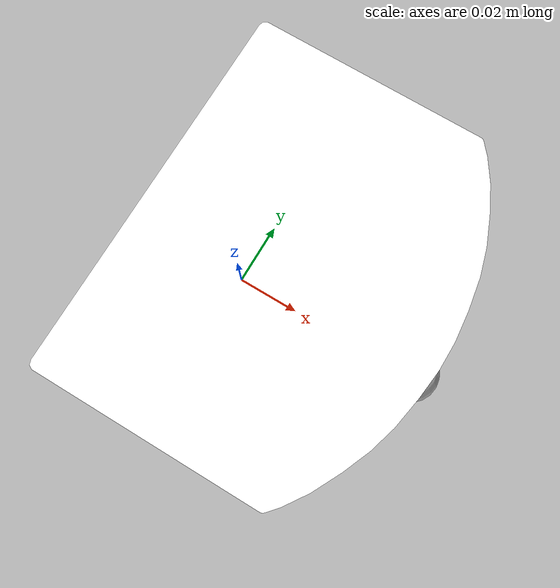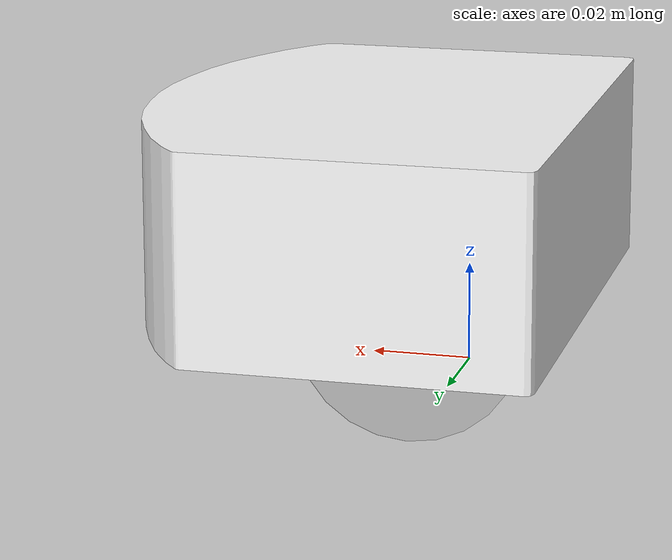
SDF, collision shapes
<sdf version='1.7'>
  <model name='thymio'>
    <link name='base_link'>
      <inertial>
        <pose>0.0243 0 0.0315 0 -0 0</pose>
        <mass>0.2</mass>
        <inertia>
          <ixx>0.0004398</ixx>
          <ixy>0</ixy>
          <ixz>-0.000152</ixz>
          <iyy>0.0005278</iyy>
          <iyz>0</iyz>
          <izz>0.0005052</izz>
        </inertia>
      </inertial>
      <collision name='base_link_collision'>
        <pose>0 0 0 0 -0 0</pose>
        <geometry>
          <mesh>
            <scale>0.8 1 1</scale>
            <uri>model://thymio/meshes/base_collision.dae</uri>
          </mesh>
        </geometry>
        <surface>
          <contact>
            <ode/>
          </contact>
          <friction>
            <ode>
              <mu>0.1</mu>
              <mu2>0.1</mu2>
            </ode>
          </friction>
        </surface>
      </collision>
      <collision name='base_link_collision_1'>
        <pose>0.06 0 0.009 0 -0 0</pose>
        <geometry>
          <sphere>
            <radius>0.009</radius>
          </sphere>
        </geometry>
        <surface>
          <contact>
            <ode/>
          </contact>
          <friction>
            <ode>
              <mu>0.1</mu>
              <mu2>0.1</mu2>
            </ode>
          </friction>
        </surface>
      </collision>
      <visual name='base_link_visual'>
        <pose>0 0 0 0 -0 0</pose>
        <geometry>
          <mesh>
            <scale>1 1 1</scale>
            <uri>model://thymio/meshes/base_simple.dae</uri>
          </mesh>
        </geometry>
      </visual>
      <self_collide>0</self_collide>

      <sensor name='ground_left_sensor' type='ray'>
        <visualize>1</visualize>
        <update_rate>10</update_rate>
        <always_on>1</always_on>
        <ray>
          <scan>
            <horizontal>
              <samples>1</samples>
              <resolution>1</resolution>
              <min_angle>0.0</min_angle>
              <max_angle>0.0</max_angle>
            </horizontal>
            <vertical>
              <samples>1</samples>
              <resolution>1</resolution>
              <min_angle>0.0</min_angle>
              <max_angle>0.0</max_angle>
            </vertical>
          </scan>
          <range>
            <min>0</min>
            <max>0.03</max>
            <resolution>0.005</resolution>
          </range>
          <noise>
            <type>gaussian</type>
            <mean>0</mean>
            <stddev>0.0025</stddev>
          </noise>
        </ray>
        <plugin name='ground_left_controller' filename='libgazebo_ros_ray_sensor.so'>
          <radiation_type>infrared</radiation_type>
          <ros>
            <namespace>my_namespace</namespace>
            <argument>~/out:=ground/left</argument>
          </ros>
          <output_type>sensor_msgs/Range</output_type>
        </plugin>
        <pose>0.07157 0.01155 0.009 3.14159 1.57079 -2.89848</pose>
        <frame name='ground_left_link'/>
      </sensor>

      <sensor name='ground_right_sensor' type='ray'>
        <visualize>1</visualize>
        <update_rate>10</update_rate>
        <always_on>1</always_on>
        <ray>
          <scan>
            <horizontal>
              <samples>1</samples>
              <resolution>1</resolution>
              <min_angle>0.0</min_angle>
              <max_angle>0.0</max_angle>
            </horizontal>
            <vertical>
              <samples>1</samples>
              <resolution>1</resolution>
              <min_angle>0.0</min_angle>
              <max_angle>0.0</max_angle>
            </vertical>
          </scan>
          <range>
            <min>0</min>
            <max>0.03</max>
            <resolution>0.005</resolution>
          </range>
          <noise>
            <type>gaussian</type>
            <mean>0</mean>
            <stddev>0.0025</stddev>
          </noise>
        </ray>
        <plugin name='ground_right_controller' filename='libgazebo_ros_ray_sensor.so'>
          <radiation_type>infrared</radiation_type>
          <ros>
            <namespace>my_namespace</namespace>
            <argument>~/out:=ground/right</argument>
          </ros>
          <output_type>sensor_msgs/Range</output_type>
        </plugin>
        <pose>0.07157 -0.01155 0.009 3.14159 1.57079 2.89848</pose>
        <frame name='ground_right_link'/>
      </sensor>
    </link>

    <link name='proximity_center_link'>
      <sensor name='proximity_center_sensor' type='ray'>
        <visualize>1</visualize>
        <update_rate>10</update_rate>
        <always_on>1</always_on>
        <ray>
          <scan>
            <horizontal>
              <samples>1</samples>
              <resolution>1</resolution>
              <min_angle>0.0</min_angle>
              <max_angle>0.0</max_angle>
            </horizontal>
            <vertical>
              <samples>1</samples>
              <resolution>1</resolution>
              <min_angle>0.0</min_angle>
              <max_angle>0.0</max_angle>
            </vertical>
          </scan>
          <range>
            <min>0</min>
            <max>0.12</max>
            <resolution>0.005</resolution>
          </range>
          <noise>
            <type>gaussian</type>
            <mean>0</mean>
            <stddev>0.0025</stddev>
          </noise>
        </ray>
        <plugin name='proximity_center_controller' filename='libgazebo_ros_ray_sensor.so'>
          <radiation_type>infrared</radiation_type>
          <ros>
            <namespace>my_namespace</namespace>
            <argument>~/out:=proximity/center</argument>
          </ros>
          <output_type>sensor_msgs/Range</output_type>
          <frame name='proximity_center_link'/>
        </plugin>
        <frame name='proximity_center_link'/>
        <pose>0.08 0 0.035 0 -0 0</pose>
      </sensor>
    </link>

    <link name='proximity_center_left_link'>
      <sensor name='proximity_center_left_sensor' type='ray'>
        <visualize>1</visualize>
        <update_rate>10</update_rate>
        <always_on>1</always_on>
        <ray>
          <scan>
            <horizontal>
              <samples>1</samples>
              <resolution>1</resolution>
              <min_angle>0.0</min_angle>
              <max_angle>0.0</max_angle>
            </horizontal>
            <vertical>
              <samples>1</samples>
              <resolution>1</resolution>
              <min_angle>0.0</min_angle>
              <max_angle>0.0</max_angle>
            </vertical>
          </scan>
          <range>
            <min>0</min>
            <max>0.12</max>
            <resolution>0.005</resolution>
          </range>
          <noise>
            <type>gaussian</type>
            <mean>0</mean>
            <stddev>0.0025</stddev>
          </noise>
        </ray>
        <plugin name='proximity_center_left_controller' filename='libgazebo_ros_ray_sensor.so'>
          <radiation_type>infrared</radiation_type>
          <ros>
            <namespace>my_namespace</namespace>
            <argument>~/out:=proximity/center_left</argument>
          </ros>
          <output_type>sensor_msgs/Range</output_type>
        </plugin>
        <pose>0.0756 0.0261 0.035 0 -0 0.33161</pose>
        <frame name='proximity_center_left_link'/>
      </sensor>
    </link>

    <link name='proximity_left_link'>
      <sensor name='proximity_left_sensor' type='ray'>
        <visualize>1</visualize>
        <update_rate>10</update_rate>
        <always_on>1</always_on>
        <ray>
          <scan>
            <horizontal>
              <samples>1</samples>
              <resolution>1</resolution>
              <min_angle>0.0</min_angle>
              <max_angle>0.0</max_angle>
            </horizontal>
            <vertical>
              <samples>1</samples>
              <resolution>1</resolution>
              <min_angle>0.0</min_angle>
              <max_angle>0.0</max_angle>
            </vertical>
          </scan>
          <range>
            <min>0</min>
            <max>0.12</max>
            <resolution>0.005</resolution>
          </range>
          <noise>
            <type>gaussian</type>
            <mean>0</mean>
            <stddev>0.0025</stddev>
          </noise>
        </ray>
        <plugin name='proximity_left_controller' filename='libgazebo_ros_ray_sensor.so'>
          <radiation_type>infrared</radiation_type>
          <ros>
            <namespace>my_namespace</namespace>
            <argument>~/out:=proximity/left</argument>
          </ros>
          <output_type>sensor_msgs/Range</output_type>
        </plugin>
        <pose>0.063 0.0493 0.035 0 -0 0.66323</pose>
        <frame name='proximity_left_link'/>
      </sensor>
    </link>

    <link name='proximity_rear_left_link'>
      <sensor name='proximity_rear_left_sensor' type='ray'>
        <visualize>1</visualize>
        <update_rate>10</update_rate>
        <always_on>1</always_on>
        <ray>
          <scan>
            <horizontal>
              <samples>1</samples>
              <resolution>1</resolution>
              <min_angle>0.0</min_angle>
              <max_angle>0.0</max_angle>
            </horizontal>
            <vertical>
              <samples>1</samples>
              <resolution>1</resolution>
              <min_angle>0.0</min_angle>
              <max_angle>0.0</max_angle>
            </vertical>
          </scan>
          <range>
            <min>0</min>
            <max>0.12</max>
            <resolution>0.005</resolution>
          </range>
          <noise>
            <type>gaussian</type>
            <mean>0</mean>
            <stddev>0.0025</stddev>
          </noise>
        </ray>
        <plugin name='proximity_rear_left_controller' filename='libgazebo_ros_ray_sensor.so'>
          <radiation_type>infrared</radiation_type>
          <ros>
            <namespace>my_namespace</namespace>
            <argument>~/out:=proximity/rear_left</argument>
          </ros>
          <output_type>sensor_msgs/Range</output_type>
        </plugin>
        <pose>-0.03 0.0305 0.035 0 -0 3.14159</pose>
        <frame name='proximity_rear_left_link'/>
      </sensor>
    </link>

    <link name='proximity_rear_right_link'>
      <sensor name='proximity_rear_right_sensor' type='ray'>
        <visualize>1</visualize>
        <update_rate>10</update_rate>
        <always_on>1</always_on>
        <ray>
          <scan>
            <horizontal>
              <samples>1</samples>
              <resolution>1</resolution>
              <min_angle>0.0</min_angle>
              <max_angle>0.0</max_angle>
            </horizontal>
            <vertical>
              <samples>1</samples>
              <resolution>1</resolution>
              <min_angle>0.0</min_angle>
              <max_angle>0.0</max_angle>
            </vertical>
          </scan>
          <range>
            <min>0</min>
            <max>0.12</max>
            <resolution>0.005</resolution>
          </range>
          <noise>
            <type>gaussian</type>
            <mean>0</mean>
            <stddev>0.0025</stddev>
          </noise>
        </ray>
        <plugin name='proximity_rear_right_controller' filename='libgazebo_ros_ray_sensor.so'>
          <radiation_type>infrared</radiation_type>
          <ros>
            <namespace>my_namespace</namespace>
            <argument>~/out:=proximity/rear_right</argument>
          </ros>
          <output_type>sensor_msgs/Range</output_type>
        </plugin>
        <pose>-0.03 -0.0305 0.035 0 -0 3.14159</pose>
        <frame name='proximity_rear_right_link'/>
      </sensor>
    </link>

    <link name='proximity_right_link'>
      <sensor name='proximity_right_sensor' type='ray'>
        <visualize>1</visualize>
        <update_rate>10</update_rate>
        <always_on>1</always_on>
        <ray>
          <scan>
            <horizontal>
              <samples>1</samples>
              <resolution>1</resolution>
              <min_angle>0.0</min_angle>
              <max_angle>0.0</max_angle>
            </horizontal>
            <vertical>
              <samples>1</samples>
              <resolution>1</resolution>
              <min_angle>0.0</min_angle>
              <max_angle>0.0</max_angle>
            </vertical>
          </scan>
          <range>
            <min>0</min>
            <max>0.12</max>
            <resolution>0.005</resolution>
          </range>
          <noise>
            <type>gaussian</type>
            <mean>0</mean>
            <stddev>0.0025</stddev>
          </noise>
        </ray>
        <plugin name='proximity_right_controller' filename='libgazebo_ros_ray_sensor.so'>
          <radiation_type>infrared</radiation_type>
          <ros>
            <namespace>my_namespace</namespace>
            <argument>~/out:=proximity/right</argument>
          </ros>
          <output_type>sensor_msgs/Range</output_type>
        </plugin>
        <pose>0.063 -0.0493 0.035 0 0 -0.66323</pose>
        <frame name='proximity_right_link'/>
      </sensor>
    </link>

    <link name='proximity_center_right_link'>
      <sensor name='proximity_center_right_sensor' type='ray'>
        <visualize>1</visualize>
        <update_rate>10</update_rate>
        <always_on>1</always_on>
        <ray>
          <scan>
            <horizontal>
              <samples>1</samples>
              <resolution>1</resolution>
              <min_angle>0.0</min_angle>
              <max_angle>0.0</max_angle>
            </horizontal>
            <vertical>
              <samples>1</samples>
              <resolution>1</resolution>
              <min_angle>0.0</min_angle>
              <max_angle>0.0</max_angle>
            </vertical>
          </scan>
          <range>
            <min>0</min>
            <max>0.12</max>
            <resolution>0.005</resolution>
          </range>
          <noise>
            <type>gaussian</type>
            <mean>0</mean>
            <stddev>0.0025</stddev>
          </noise>
        </ray>
        <plugin name='proximity_center_right_controller' filename='libgazebo_ros_ray_sensor.so'>
          <radiation_type>infrared</radiation_type>
          <ros>
            <namespace>my_namespace</namespace>
            <argument>~/out:=proximity/center_right</argument>
          </ros>
          <output_type>sensor_msgs/Range</output_type>
        </plugin>
        <pose>0.0756 -0.0261 0.035 0 0 -0.33161</pose>
        <frame name='proximity_center_right_link'/>
      </sensor>
    </link>

    <joint name='left_wheel_joint' type='revolute'>
      <pose relative_to='base_link'>0 0.04675 0.022 0 -0 0</pose>
      <parent>base_link</parent>
      <child>left_wheel_link</child>
      <axis>
        <xyz>0 1 0</xyz>
        <limit>
          <effort>0</effort>
          <velocity>7.757</velocity>
          <lower>-1e+16</lower>
          <upper>1e+16</upper>
        </limit>
        <dynamics>
          <damping>0.1</damping>
          <friction>0.1</friction>
          <spring_reference>0</spring_reference>
          <spring_stiffness>0</spring_stiffness>
        </dynamics>
      </axis>
    </joint>
    <link name='left_wheel_link'>
      <pose relative_to='left_wheel_joint'>0 0 0 0 -0 0</pose>
      <inertial>
        <pose>0 0 0 0 -0 0</pose>
        <mass>0.024</mass>
        <inertia>
          <ixx>3.354e-06</ixx>
          <ixy>0</ixy>
          <ixz>0</ixz>
          <iyy>5.808e-06</iyy>
          <iyz>0</iyz>
          <izz>3.354e-06</izz>
        </inertia>
      </inertial>
      <collision name='left_wheel_link_collision'>
        <pose>0 0 0 1.5708 -0 0</pose>
        <geometry>
          <cylinder>
            <length>0.015</length>
            <radius>0.022</radius>
          </cylinder>
        </geometry>
        <surface>
          <contact>
            <ode/>
          </contact>
          <friction>
            <ode>
              <mu>100</mu>
              <mu2>50</mu2>
            </ode>
          </friction>
        </surface>
      </collision>
      <visual name='left_wheel_link_visual'>
        <pose>0 0 0 1.5708 -0 0</pose>
        <geometry>
          <mesh>
            <scale>1 1 1</scale>
            <uri>model://thymio/meshes/wheel.dae</uri>
          </mesh>
        </geometry>
      </visual>
    </link>
    <joint name='right_wheel_joint' type='revolute'>
      <pose relative_to='base_link'>0 -0.04675 0.022 0 -0 0</pose>
      <parent>base_link</parent>
      <child>right_wheel_link</child>
      <axis>
        <xyz>0 1 0</xyz>
        <limit>
          <effort>0</effort>
          <velocity>7.757</velocity>
          <lower>-1e+16</lower>
          <upper>1e+16</upper>
        </limit>
        <dynamics>
          <damping>0.1</damping>
          <friction>0.1</friction>
          <spring_reference>0</spring_reference>
          <spring_stiffness>0</spring_stiffness>
        </dynamics>
      </axis>
    </joint>
    <link name='right_wheel_link'>
      <pose relative_to='right_wheel_joint'>0 0 0 0 -0 0</pose>
      <inertial>
        <pose>0 0 0 0 -0 0</pose>
        <mass>0.024</mass>
        <inertia>
          <ixx>3.354e-06</ixx>
          <ixy>0</ixy>
          <ixz>0</ixz>
          <iyy>5.808e-06</iyy>
          <iyz>0</iyz>
          <izz>3.354e-06</izz>
        </inertia>
      </inertial>
      <collision name='right_wheel_link_collision'>
        <pose>0 0 0 1.5708 -0 0</pose>
        <geometry>
          <cylinder>
            <length>0.015</length>
            <radius>0.022</radius>
          </cylinder>
        </geometry>
        <surface>
          <contact>
            <ode/>
          </contact>
          <friction>
            <ode>
              <mu>100</mu>
              <mu2>50</mu2>
            </ode>
          </friction>
        </surface>
      </collision>
      <visual name='right_wheel_link_visual'>
        <pose>0 0 0 -1.5708 0 0</pose>
        <geometry>
          <mesh>
            <scale>1 1 1</scale>
            <uri>model://thymio/meshes/wheel.dae</uri>
          </mesh>
        </geometry>
      </visual>
    </link>
    <static>0</static>
    <plugin name='differential_drive_controller' filename='libgazebo_ros_diff_drive.so'>
      <odometry_source>0</odometry_source>
      <always_on>1</always_on>
      <update_rate>20.0</update_rate>
      <left_joint>left_wheel_joint</left_joint>
      <right_joint>right_wheel_joint</right_joint>
      <wheel_separation>0.0935</wheel_separation>
      <wheel_diameter>0.044</wheel_diameter>
      <max_wheel_torque>10.0</max_wheel_torque>
      <max_wheel_acceleration>0</max_wheel_acceleration>
      <publish_odom>1</publish_odom>
      <odometry_frame>odom</odometry_frame>
      <publish_wheel_tf>1</publish_wheel_tf>
      <publish_odom_tf>1</publish_odom_tf>
      <robot_base_frame>base_link</robot_base_frame>
      <namespace/>
    </plugin>
    <plugin name='joint_states' filename='libgazebo_ros_joint_state_publisher.so'>
      <joint_name>right_wheel_joint</joint_name>
      <joint_name>left_wheel_joint</joint_name>
      <update_rate>20.0</update_rate>
      <namespace/>
    </plugin>
  </model>
</sdf>
